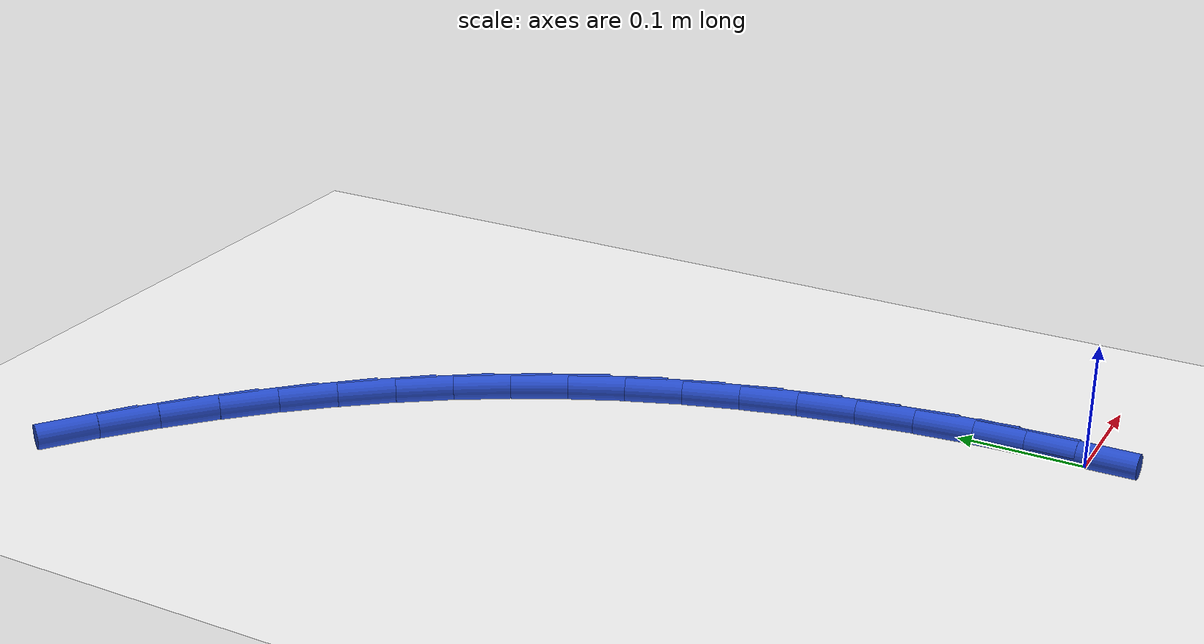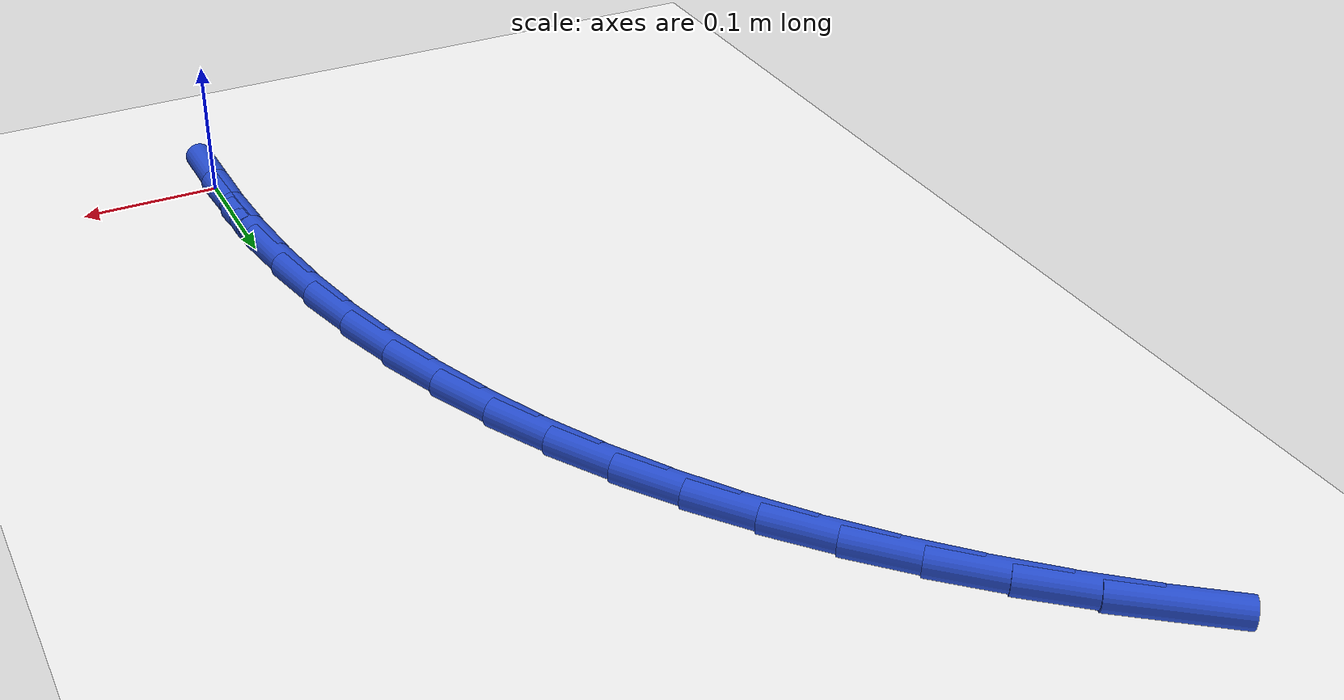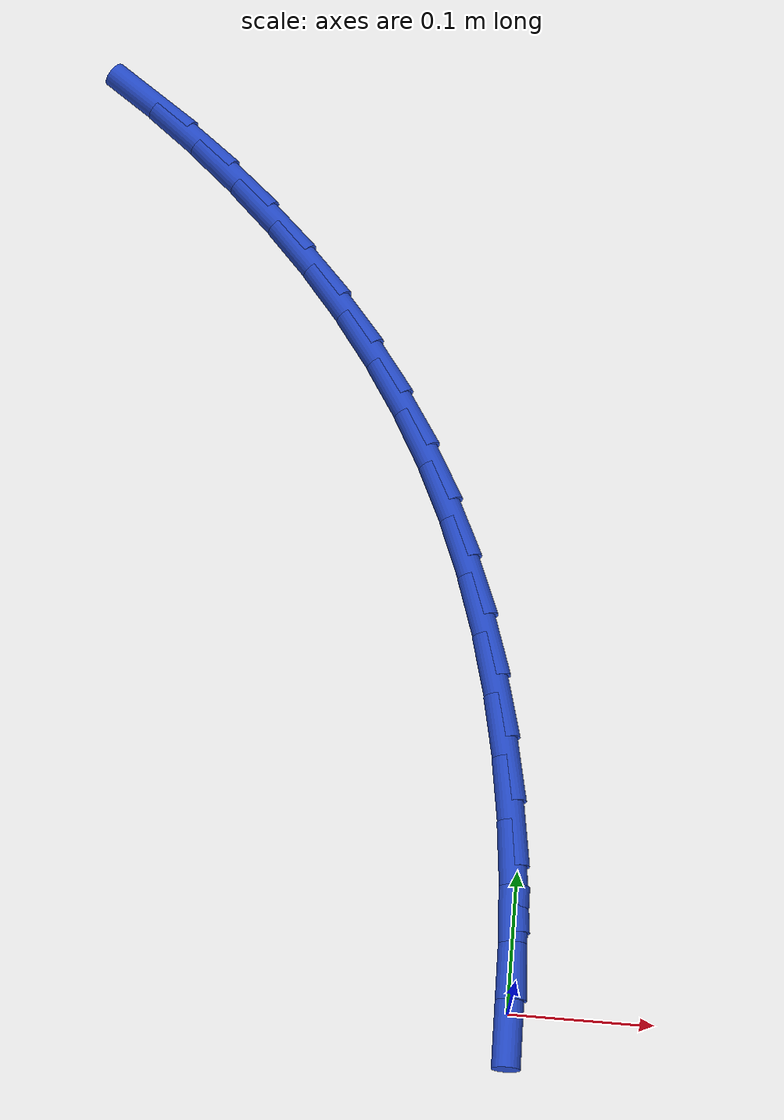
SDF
<sdf version="1.6">
 <world name="default">
  <model name="ground_plane">
   <static>1</static>
   <link name="link">
    <collision name="collision">
     <geometry><plane><normal>0 0 1</normal><size>100 100</size></plane></geometry>
     <surface><friction><ode><mu>100</mu><mu2>50</mu2></ode></friction></surface>
    </collision>
    <visual name="visual">
     <cast_shadows>0</cast_shadows>
     <geometry><plane><normal>0 0 1</normal><size>100 100</size></plane></geometry>
     <material>
      <script><uri>file://media/materials/scripts/gazebo.material</uri><name>Gazebo/WhiteGlow</name></script>
     </material>
    </visual>
   </link>
  </model>
  <model name="line">
   <link name="link_1">
    <pose>-0.0005094402092433176 0.04663922307423915 0.01 0 1.57 -1.5152314044498096</pose>
    <collision name="collision">
     <geometry><cylinder><radius>0.01</radius><length>0.08</length></cylinder></geometry>
    </collision>
    <visual name="visual">
     <material>
      <script><name>Gazebo/Blue</name><uri>file://media/materials/scripts/gazebo.material</uri></script>
     </material>
     <geometry><cylinder><radius>0.01</radius><length>0.08</length></cylinder></geometry>
    </visual>
   </link>
   <link name="link_2">
    <pose>-0.0031033703815959756 0.0932740416064086 0.01 0 1.57 -1.4688038409644482</pose>
    <collision name="collision">
     <geometry><cylinder><radius>0.01</radius><length>0.08</length></cylinder></geometry>
    </collision>
    <visual name="visual">
     <material>
      <script><name>Gazebo/Blue</name><uri>file://media/materials/scripts/gazebo.material</uri></script>
     </material>
     <geometry><cylinder><radius>0.01</radius><length>0.08</length></cylinder></geometry>
    </visual>
   </link>
   <link name="link_3">
    <pose>-0.007859479013375437 0.13974418487454873 0.01 0 1.57 -1.4203342513550217</pose>
    <collision name="collision">
     <geometry><cylinder><radius>0.01</radius><length>0.08</length></cylinder></geometry>
    </collision>
    <visual name="visual">
     <material>
      <script><name>Gazebo/Blue</name><uri>file://media/materials/scripts/gazebo.material</uri></script>
     </material>
     <geometry><cylinder><radius>0.01</radius><length>0.08</length></cylinder></geometry>
    </visual>
   </link>
   <link name="link_4">
    <pose>-0.014855454600899176 0.1858893821566998 0.01 0 1.57 -1.3695808221133632</pose>
    <collision name="collision">
     <geometry><cylinder><radius>0.01</radius><length>0.08</length></cylinder></geometry>
    </collision>
    <visual name="visual">
     <material>
      <script><name>Gazebo/Blue</name><uri>file://media/materials/scripts/gazebo.material</uri></script>
     </material>
     <geometry><cylinder><radius>0.01</radius><length>0.08</length></cylinder></geometry>
    </visual>
   </link>
   <link name="link_5">
    <pose>-0.02416898564048467 0.23154936273090207 0.01 0 1.57 -1.3163240880899818</pose>
    <collision name="collision">
     <geometry><cylinder><radius>0.01</radius><length>0.08</length></cylinder></geometry>
    </collision>
    <visual name="visual">
     <material>
      <script><name>Gazebo/Blue</name><uri>file://media/materials/scripts/gazebo.material</uri></script>
     </material>
     <geometry><cylinder><radius>0.01</radius><length>0.08</length></cylinder></geometry>
    </visual>
   </link>
   <link name="link_6">
    <pose>-0.03587776062844941 0.2765638558751961 0.01 0 1.57 -1.2603771881465995</pose>
    <collision name="collision">
     <geometry><cylinder><radius>0.01</radius><length>0.08</length></cylinder></geometry>
    </collision>
    <visual name="visual">
     <material>
      <script><name>Gazebo/Blue</name><uri>file://media/materials/scripts/gazebo.material</uri></script>
     </material>
     <geometry><cylinder><radius>0.01</radius><length>0.08</length></cylinder></geometry>
    </visual>
   </link>
   <link name="link_7">
    <pose>-0.05005946806111087 0.320772590867622 0.01 0 1.57 -1.2015991073382575</pose>
    <collision name="collision">
     <geometry><cylinder><radius>0.01</radius><length>0.08</length></cylinder></geometry>
    </collision>
    <visual name="visual">
     <material>
      <script><name>Gazebo/Blue</name><uri>file://media/materials/scripts/gazebo.material</uri></script>
     </material>
     <geometry><cylinder><radius>0.01</radius><length>0.08</length></cylinder></geometry>
    </visual>
   </link>
   <link name="link_8">
    <pose>-0.06679179643478654 0.36401529698622015 0.01 0 1.57 -1.1399105968034131</pose>
    <collision name="collision">
     <geometry><cylinder><radius>0.01</radius><length>0.08</length></cylinder></geometry>
    </collision>
    <visual name="visual">
     <material>
      <script><name>Gazebo/Blue</name><uri>file://media/materials/scripts/gazebo.material</uri></script>
     </material>
     <geometry><cylinder><radius>0.01</radius><length>0.08</length></cylinder></geometry>
    </visual>
   </link>
   <link name="link_9">
    <pose>-0.08615243424579389 0.40613170350903094 0.01 0 1.57 -1.0761626621845646</pose>
    <collision name="collision">
     <geometry><cylinder><radius>0.01</radius><length>0.08</length></cylinder></geometry>
    </collision>
    <visual name="visual">
     <material>
      <script><name>Gazebo/Blue</name><uri>file://media/materials/scripts/gazebo.material</uri></script>
     </material>
     <geometry><cylinder><radius>0.01</radius><length>0.08</length></cylinder></geometry>
    </visual>
   </link>
   <link name="link_10">
    <pose>-0.10818252262629881 0.4469769590228987 0.01 0 1.57 -1.0139396222992565</pose>
    <collision name="collision">
     <geometry><cylinder><radius>0.01</radius><length>0.08</length></cylinder></geometry>
    </collision>
    <visual name="visual">
     <material>
      <script><name>Gazebo/Blue</name><uri>file://media/materials/scripts/gazebo.material</uri></script>
     </material>
     <geometry><cylinder><radius>0.01</radius><length>0.08</length></cylinder></geometry>
    </visual>
   </link>
   <link name="link_11">
    <pose>-0.13277047609616938 0.48647064737155543 0.01 0 1.57 -0.9541138990512151</pose>
    <collision name="collision">
     <geometry><cylinder><radius>0.01</radius><length>0.08</length></cylinder></geometry>
    </collision>
    <visual name="visual">
     <material>
      <script><name>Gazebo/Blue</name><uri>file://media/materials/scripts/gazebo.material</uri></script>
     </material>
     <geometry><cylinder><radius>0.01</radius><length>0.08</length></cylinder></geometry>
    </visual>
   </link>
   <link name="link_12">
    <pose>-0.15976482081044469 0.5245491812735166 0.01 0 1.57 -0.896564921033001</pose>
    <collision name="collision">
     <geometry><cylinder><radius>0.01</radius><length>0.08</length></cylinder></geometry>
    </collision>
    <visual name="visual">
     <material>
      <script><name>Gazebo/Blue</name><uri>file://media/materials/scripts/gazebo.material</uri></script>
     </material>
     <geometry><cylinder><radius>0.01</radius><length>0.08</length></cylinder></geometry>
    </visual>
   </link>
   <link name="link_13">
    <pose>-0.18901408280578239 0.5611489734972429 0.01 0 1.57 -0.8411264061034113</pose>
    <collision name="collision">
     <geometry><cylinder><radius>0.01</radius><length>0.08</length></cylinder></geometry>
    </collision>
    <visual name="visual">
     <material>
      <script><name>Gazebo/Blue</name><uri>file://media/materials/scripts/gazebo.material</uri></script>
     </material>
     <geometry><cylinder><radius>0.01</radius><length>0.08</length></cylinder></geometry>
    </visual>
   </link>
   <link name="link_14">
    <pose>-0.22036678811884014 0.596206436811195 0.01 0 1.57 -0.7875982919273846</pose>
    <collision name="collision">
     <geometry><cylinder><radius>0.01</radius><length>0.08</length></cylinder></geometry>
    </collision>
    <visual name="visual">
     <material>
      <script><name>Gazebo/Blue</name><uri>file://media/materials/scripts/gazebo.material</uri></script>
     </material>
     <geometry><cylinder><radius>0.01</radius><length>0.08</length></cylinder></geometry>
    </visual>
   </link>
   <link name="link_15">
    <pose>-0.2536714627862756 0.6296579839838337 0.01 0 1.57 -0.7357564472616916</pose>
    <collision name="collision">
     <geometry><cylinder><radius>0.01</radius><length>0.08</length></cylinder></geometry>
    </collision>
    <visual name="visual">
     <material>
      <script><name>Gazebo/Blue</name><uri>file://media/materials/scripts/gazebo.material</uri></script>
     </material>
     <geometry><cylinder><radius>0.01</radius><length>0.08</length></cylinder></geometry>
    </visual>
   </link>
   <link name="link_16">
    <pose>-0.2887766328447464 0.6614400277836197 0.01 0 1.57 -0.6853601250105635</pose>
    <collision name="collision">
     <geometry><cylinder><radius>0.01</radius><length>0.08</length></cylinder></geometry>
    </collision>
    <visual name="visual">
     <material>
      <script><name>Gazebo/Blue</name><uri>file://media/materials/scripts/gazebo.material</uri></script>
     </material>
     <geometry><cylinder><radius>0.01</radius><length>0.08</length></cylinder></geometry>
    </visual>
   </link>
   <link name="link_17">
    <pose>-0.3255308243309102 0.6914889809790136 0.01 0 1.57 -0.6361573325048</pose>
    <collision name="collision">
     <geometry><cylinder><radius>0.01</radius><length>0.08</length></cylinder></geometry>
    </collision>
    <visual name="visual">
     <material>
      <script><name>Gazebo/Blue</name><uri>file://media/materials/scripts/gazebo.material</uri></script>
     </material>
     <geometry><cylinder><radius>0.01</radius><length>0.08</length></cylinder></geometry>
    </visual>
   </link>
   <link name="link_150">
    <pose>2.949029909160572e-17 8.326672684688674e-17 0.01 0 1.57 -1.5601654174745658</pose>
    <collision name="collision">
     <geometry><cylinder><radius>0.01</radius><length>0.08</length></cylinder></geometry>
    </collision>
    <visual name="visual">
     <material>
      <script><name>Gazebo/Blue</name><uri>file://media/materials/scripts/gazebo.material</uri></script>
     </material>
     <geometry><cylinder><radius>0.01</radius><length>0.08</length></cylinder></geometry>
    </visual>
   </link>
   <link name="link_151">
    <pose>-0.000496019850755168 0.046656513527728934 0.01 0 1.57 -1.5601654174745658</pose>
    <collision name="collision">
     <geometry><cylinder><radius>0.01</radius><length>0.08</length></cylinder></geometry>
    </collision>
    <visual name="visual">
     <material>
      <script><name>Gazebo/Blue</name><uri>file://media/materials/scripts/gazebo.material</uri></script>
     </material>
     <geometry><cylinder><radius>0.01</radius><length>0.08</length></cylinder></geometry>
    </visual>
   </link>
  </model>
 </world>
</sdf>
